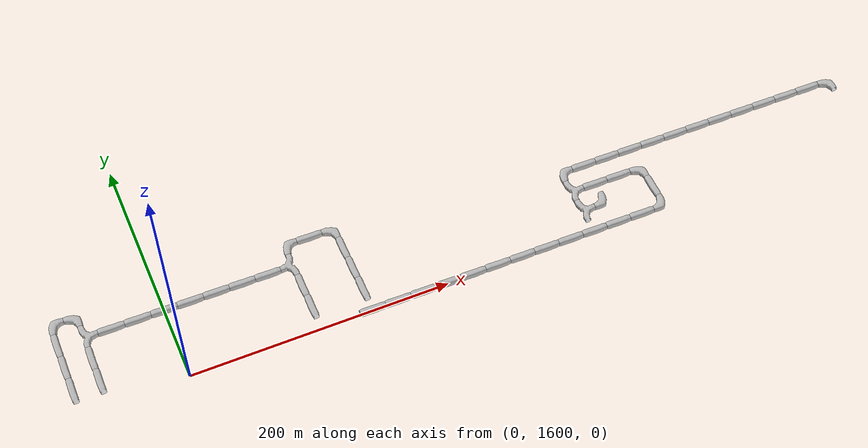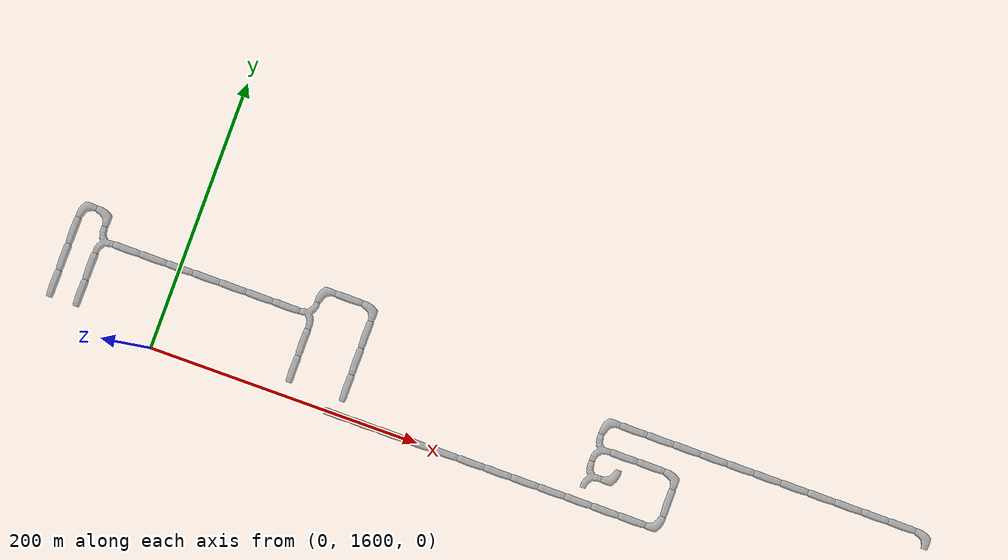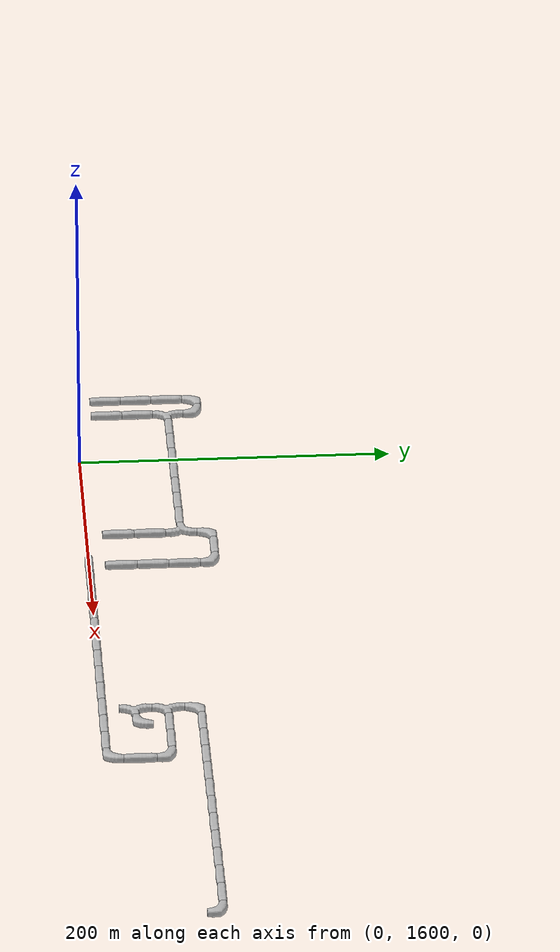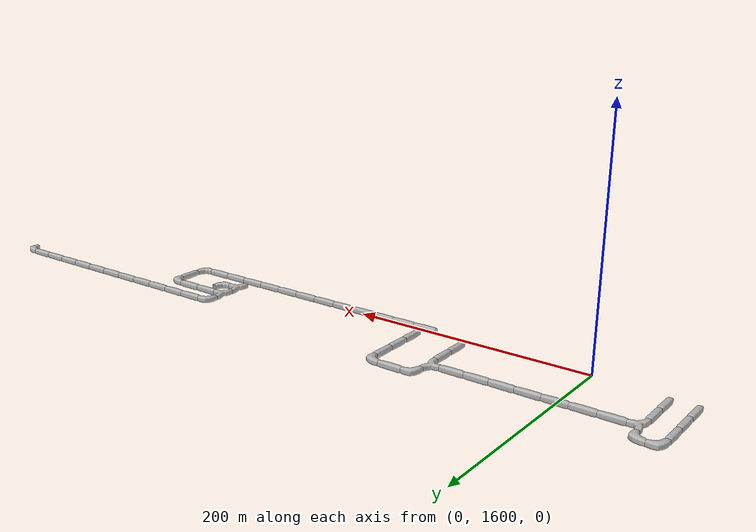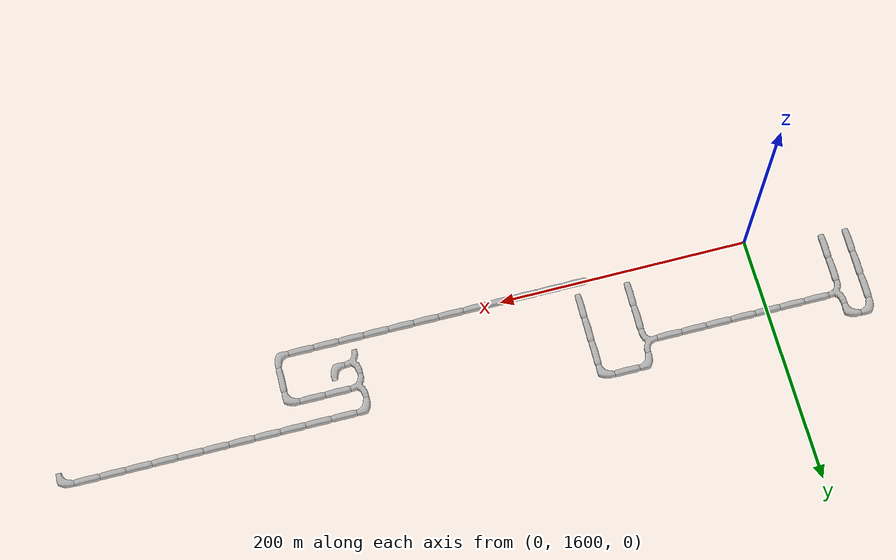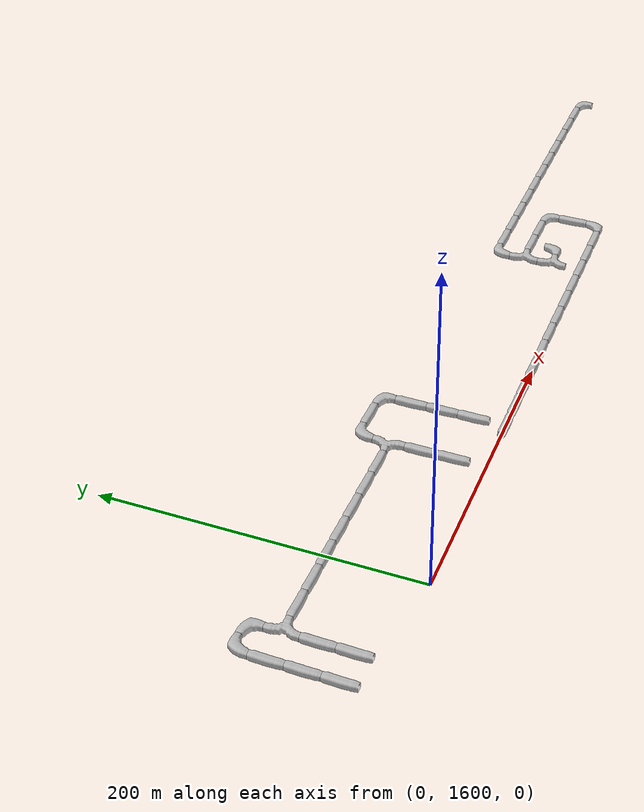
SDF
<sdf version="1.6">
 <world name="cave_32000_64">
  <include>
   <static>true</static>
   <name>cave_-4_81</name>
   <pose>-80 1620 0 0 0 0.0</pose>
   <uri>model://cave_straight_20m</uri>
  </include>
  <include>
   <static>true</static>
   <name>cave_-4_82</name>
   <pose>-80 1640 0 0 0 0.0</pose>
   <uri>model://cave_straight_20m</uri>
  </include>
  <include>
   <static>true</static>
   <name>cave_-4_83</name>
   <pose>-80 1660 0 0 0 0.0</pose>
   <uri>model://cave_straight_20m</uri>
  </include>
  <include>
   <static>true</static>
   <name>cave_-4_84</name>
   <pose>-80 1680 0 0 0 -1.5707963267948966</pose>
   <uri>model://cave_L_20m</uri>
  </include>
  <include>
   <static>true</static>
   <name>cave_-3_84</name>
   <pose>-60 1680 0 0 0 3.141592653589793</pose>
   <uri>model://cave_L_20m</uri>
  </include>
  <include>
   <static>true</static>
   <name>cave_-3_83</name>
   <pose>-60 1660 0 0 0 -1.5707963267948966</pose>
   <uri>model://cave_3way_20m</uri>
  </include>
  <include>
   <static>true</static>
   <name>cave_-2_83</name>
   <pose>-40 1660 0 0 0 1.5707963267948966</pose>
   <uri>model://cave_straight_20m</uri>
  </include>
  <include>
   <static>true</static>
   <name>cave_-1_83</name>
   <pose>-20 1660 0 0 0 1.5707963267948966</pose>
   <uri>model://cave_straight_20m</uri>
  </include>
  <include>
   <static>true</static>
   <name>cave_0_83</name>
   <pose>0 1660 0 0 0 1.5707963267948966</pose>
   <uri>model://cave_straight_20m</uri>
  </include>
  <include>
   <static>true</static>
   <name>cave_1_83</name>
   <pose>20 1660 0 0 0 1.5707963267948966</pose>
   <uri>model://cave_straight_20m</uri>
  </include>
  <include>
   <static>true</static>
   <name>cave_2_83</name>
   <pose>40 1660 0 0 0 1.5707963267948966</pose>
   <uri>model://cave_straight_20m</uri>
  </include>
  <include>
   <static>true</static>
   <name>cave_3_83</name>
   <pose>60 1660 0 0 0 1.5707963267948966</pose>
   <uri>model://cave_straight_20m</uri>
  </include>
  <include>
   <static>true</static>
   <name>cave_4_83</name>
   <pose>80 1660 0 0 0 1.5707963267948966</pose>
   <uri>model://cave_straight_20m</uri>
  </include>
  <include>
   <static>true</static>
   <name>cave_5_83</name>
   <pose>100 1660 0 0 0 1.5707963267948966</pose>
   <uri>model://cave_3way_20m</uri>
  </include>
  <include>
   <static>true</static>
   <name>cave_5_82</name>
   <pose>100 1640 0 0 0 0.0</pose>
   <uri>model://cave_straight_20m</uri>
  </include>
  <include>
   <static>true</static>
   <name>cave_5_81</name>
   <pose>100 1620 0 0 0 0.0</pose>
   <uri>model://cave_straight_20m</uri>
  </include>
  <include>
   <static>true</static>
   <name>cave_7_80</name>
   <pose>140 1600 0 0 0 1.5707963267948966</pose>
   <uri>model://cave_straight_20m</uri>
  </include>
  <include>
   <static>true</static>
   <name>cave_8_80</name>
   <pose>160 1600 0 0 0 1.5707963267948966</pose>
   <uri>model://cave_straight_20m</uri>
  </include>
  <include>
   <static>true</static>
   <name>cave_9_80</name>
   <pose>180 1600 0 0 0 1.5707963267948966</pose>
   <uri>model://cave_straight_20m</uri>
  </include>
  <include>
   <static>true</static>
   <name>cave_10_80</name>
   <pose>200 1600 0 0 0 1.5707963267948966</pose>
   <uri>model://cave_straight_20m</uri>
  </include>
  <include>
   <static>true</static>
   <name>cave_11_80</name>
   <pose>220 1600 0 0 0 1.5707963267948966</pose>
   <uri>model://cave_straight_20m</uri>
  </include>
  <include>
   <static>true</static>
   <name>cave_12_80</name>
   <pose>240 1600 0 0 0 1.5707963267948966</pose>
   <uri>model://cave_straight_20m</uri>
  </include>
  <include>
   <static>true</static>
   <name>cave_13_80</name>
   <pose>260 1600 0 0 0 1.5707963267948966</pose>
   <uri>model://cave_straight_20m</uri>
  </include>
  <include>
   <static>true</static>
   <name>cave_14_80</name>
   <pose>280 1600 0 0 0 1.5707963267948966</pose>
   <uri>model://cave_straight_20m</uri>
  </include>
  <include>
   <static>true</static>
   <name>cave_15_80</name>
   <pose>300 1600 0 0 0 1.5707963267948966</pose>
   <uri>model://cave_straight_20m</uri>
  </include>
  <include>
   <static>true</static>
   <name>cave_16_80</name>
   <pose>320 1600 0 0 0 1.5707963267948966</pose>
   <uri>model://cave_straight_20m</uri>
  </include>
  <include>
   <static>true</static>
   <name>cave_17_80</name>
   <pose>340 1600 0 0 0 1.5707963267948966</pose>
   <uri>model://cave_straight_20m</uri>
  </include>
  <include>
   <static>true</static>
   <name>cave_18_80</name>
   <pose>360 1600 0 0 0 1.5707963267948966</pose>
   <uri>model://cave_straight_20m</uri>
  </include>
  <include>
   <static>true</static>
   <name>cave_19_80</name>
   <pose>380 1600 0 0 0 1.5707963267948966</pose>
   <uri>model://cave_L_20m</uri>
  </include>
  <include>
   <static>true</static>
   <name>cave_19_81</name>
   <pose>380 1620 0 0 0 0.0</pose>
   <uri>model://cave_straight_20m</uri>
  </include>
  <include>
   <static>true</static>
   <name>cave_19_82</name>
   <pose>380 1640 0 0 0 3.141592653589793</pose>
   <uri>model://cave_L_20m</uri>
  </include>
  <include>
   <static>true</static>
   <name>cave_18_82</name>
   <pose>360 1640 0 0 0 1.5707963267948966</pose>
   <uri>model://cave_straight_20m</uri>
  </include>
  <include>
   <static>true</static>
   <name>cave_17_82</name>
   <pose>340 1640 0 0 0 1.5707963267948966</pose>
   <uri>model://cave_straight_20m</uri>
  </include>
  <include>
   <static>true</static>
   <name>cave_16_82</name>
   <pose>320 1640 0 0 0 -1.5707963267948966</pose>
   <uri>model://cave_3way_20m</uri>
  </include>
  <include>
   <static>true</static>
   <name>cave_16_81</name>
   <pose>320 1620 0 0 0 -1.5707963267948966</pose>
   <uri>model://cave_3way_20m</uri>
  </include>
  <include>
   <static>true</static>
   <name>cave_17_81</name>
   <pose>340 1620 0 0 0 1.5707963267948966</pose>
   <uri>model://cave_L_20m</uri>
  </include>
  <include>
   <static>true</static>
   <name>cave_16_83</name>
   <pose>320 1660 0 0 0 -1.5707963267948966</pose>
   <uri>model://cave_L_20m</uri>
  </include>
  <include>
   <static>true</static>
   <name>cave_17_83</name>
   <pose>340 1660 0 0 0 1.5707963267948966</pose>
   <uri>model://cave_straight_20m</uri>
  </include>
  <include>
   <static>true</static>
   <name>cave_18_83</name>
   <pose>360 1660 0 0 0 1.5707963267948966</pose>
   <uri>model://cave_straight_20m</uri>
  </include>
  <include>
   <static>true</static>
   <name>cave_19_83</name>
   <pose>380 1660 0 0 0 1.5707963267948966</pose>
   <uri>model://cave_straight_20m</uri>
  </include>
  <include>
   <static>true</static>
   <name>cave_20_83</name>
   <pose>400 1660 0 0 0 1.5707963267948966</pose>
   <uri>model://cave_straight_20m</uri>
  </include>
  <include>
   <static>true</static>
   <name>cave_21_83</name>
   <pose>420 1660 0 0 0 1.5707963267948966</pose>
   <uri>model://cave_straight_20m</uri>
  </include>
  <include>
   <static>true</static>
   <name>cave_22_83</name>
   <pose>440 1660 0 0 0 1.5707963267948966</pose>
   <uri>model://cave_straight_20m</uri>
  </include>
  <include>
   <static>true</static>
   <name>cave_23_83</name>
   <pose>460 1660 0 0 0 1.5707963267948966</pose>
   <uri>model://cave_straight_20m</uri>
  </include>
  <include>
   <static>true</static>
   <name>cave_24_83</name>
   <pose>480 1660 0 0 0 1.5707963267948966</pose>
   <uri>model://cave_straight_20m</uri>
  </include>
  <include>
   <static>true</static>
   <name>cave_25_83</name>
   <pose>500 1660 0 0 0 1.5707963267948966</pose>
   <uri>model://cave_straight_20m</uri>
  </include>
  <include>
   <static>true</static>
   <name>cave_26_83</name>
   <pose>520 1660 0 0 0 1.5707963267948966</pose>
   <uri>model://cave_straight_20m</uri>
  </include>
  <include>
   <static>true</static>
   <name>cave_27_83</name>
   <pose>540 1660 0 0 0 1.5707963267948966</pose>
   <uri>model://cave_straight_20m</uri>
  </include>
  <include>
   <static>true</static>
   <name>cave_28_83</name>
   <pose>560 1660 0 0 0 3.141592653589793</pose>
   <uri>model://cave_L_20m</uri>
  </include>
  <include>
   <static>true</static>
   <name>cave_5_84</name>
   <pose>100 1680 0 0 0 -1.5707963267948966</pose>
   <uri>model://cave_L_20m</uri>
  </include>
  <include>
   <static>true</static>
   <name>cave_6_84</name>
   <pose>120 1680 0 0 0 1.5707963267948966</pose>
   <uri>model://cave_straight_20m</uri>
  </include>
  <include>
   <static>true</static>
   <name>cave_7_84</name>
   <pose>140 1680 0 0 0 3.141592653589793</pose>
   <uri>model://cave_L_20m</uri>
  </include>
  <include>
   <static>true</static>
   <name>cave_7_83</name>
   <pose>140 1660 0 0 0 0.0</pose>
   <uri>model://cave_straight_20m</uri>
  </include>
  <include>
   <static>true</static>
   <name>cave_7_82</name>
   <pose>140 1640 0 0 0 0.0</pose>
   <uri>model://cave_straight_20m</uri>
  </include>
  <include>
   <static>true</static>
   <name>cave_7_81</name>
   <pose>140 1620 0 0 0 0.0</pose>
   <uri>model://cave_straight_20m</uri>
  </include>
  <include>
   <static>true</static>
   <name>cave_-3_82</name>
   <pose>-60 1640 0 0 0 0.0</pose>
   <uri>model://cave_straight_20m</uri>
  </include>
  <include>
   <static>true</static>
   <name>cave_-3_81</name>
   <pose>-60 1620 0 0 0 0.0</pose>
   <uri>model://cave_straight_20m</uri>
  </include>
 </world>
</sdf>
